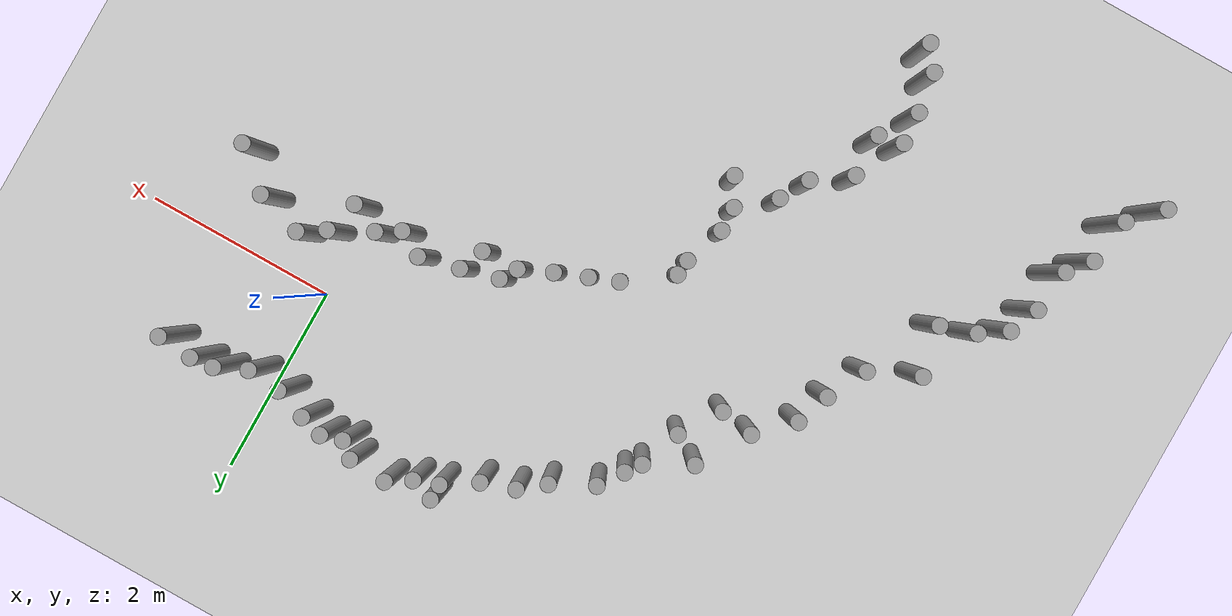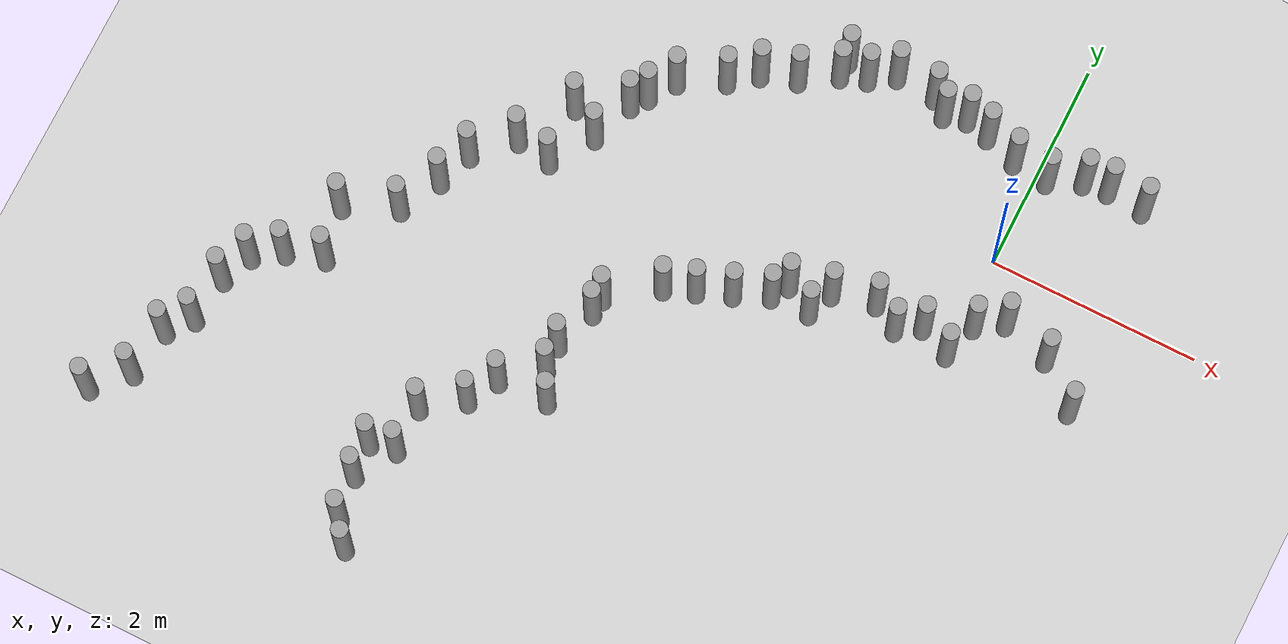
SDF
<sdf version="1.6">
 <world name="default">
  <model name="ground_plane">
   <static>1</static>
   <link name="link">
    <collision name="collision">
     <geometry><plane><normal>0 0 1</normal><size>100 100</size></plane></geometry>
     <surface><friction><ode><mu>100</mu><mu2>50</mu2></ode></friction></surface>
    </collision>
    <visual name="visual">
     <cast_shadows>0</cast_shadows>
     <geometry><plane><normal>0 0 1</normal><size>100 100</size></plane></geometry>
     <material>
      <script><uri>file://media/materials/scripts/gazebo.material</uri><name>Gazebo/Grey</name></script>
     </material>
    </visual>
   </link>
  </model>
  <model name="unit_cylinder_0">
   <pose>0.355357 -0.504616 0.499995 0 0 -1.4e-05</pose>
   <link name="link">
    <inertial>
     <mass>1</mass>
     <inertia><ixx>0.145833</ixx><ixy>0</ixy><ixz>0</ixz><iyy>0.145833</iyy><iyz>0</iyz><izz>0.125</izz></inertia>
    </inertial>
    <collision name="collision">
     <geometry><cylinder><radius>0.0811365</radius><length>1</length></cylinder></geometry>
    </collision>
    <visual name="visual">
     <geometry><cylinder><radius>0.0811365</radius><length>1</length></cylinder></geometry>
     <material>
      <script><name>Gazebo/Grey</name><uri>file://media/materials/scripts/gazebo.material</uri></script>
     </material>
    </visual>
   </link>
  </model>
  <model name="unit_cylinder_0_clone">
   <pose>0.817751 -0.645619 0.499993 0 -0 0.003141</pose>
   <link name="link">
    <inertial>
     <mass>1</mass>
     <inertia><ixx>0.145833</ixx><ixy>0</ixy><ixz>0</ixz><iyy>0.145833</iyy><iyz>0</iyz><izz>0.125</izz></inertia>
    </inertial>
    <collision name="collision">
     <geometry><cylinder><radius>0.0811363</radius><length>1</length></cylinder></geometry>
    </collision>
    <visual name="visual">
     <geometry><cylinder><radius>0.0811363</radius><length>1</length></cylinder></geometry>
     <material>
      <script><name>Gazebo/Grey</name><uri>file://media/materials/scripts/gazebo.material</uri></script>
     </material>
    </visual>
   </link>
  </model>
  <model name="unit_cylinder_0_clone_clone">
   <pose>1.20742 -0.981702 0.5 0 -0 0.006974</pose>
   <link name="link">
    <inertial>
     <mass>1</mass>
     <inertia><ixx>0.145833</ixx><ixy>0</ixy><ixz>0</ixz><iyy>0.145833</iyy><iyz>0</iyz><izz>0.125</izz></inertia>
    </inertial>
    <collision name="collision">
     <geometry><cylinder><radius>0.0811363</radius><length>1</length></cylinder></geometry>
    </collision>
    <visual name="visual">
     <geometry><cylinder><radius>0.0811363</radius><length>1</length></cylinder></geometry>
     <material>
      <script><name>Gazebo/Grey</name><uri>file://media/materials/scripts/gazebo.material</uri></script>
     </material>
    </visual>
   </link>
  </model>
  <model name="unit_cylinder_0_clone_clone_38">
   <pose>-4.24607 -4.05302 0.49999 0 -0 0.004737</pose>
   <link name="link">
    <inertial>
     <mass>1</mass>
     <inertia><ixx>0.145833</ixx><ixy>0</ixy><ixz>0</ixz><iyy>0.145833</iyy><iyz>0</iyz><izz>0.125</izz></inertia>
    </inertial>
    <collision name="collision">
     <geometry><cylinder><radius>0.0811363</radius><length>1</length></cylinder></geometry>
    </collision>
    <visual name="visual">
     <geometry><cylinder><radius>0.0811363</radius><length>1</length></cylinder></geometry>
     <material>
      <script><name>Gazebo/Grey</name><uri>file://media/materials/scripts/gazebo.material</uri></script>
     </material>
    </visual>
   </link>
  </model>
  <model name="unit_cylinder_0_clone_clone_39">
   <pose>-2.99157 -1.91916 0.499993 0 -0 0.0032</pose>
   <link name="link">
    <inertial>
     <mass>1</mass>
     <inertia><ixx>0.145833</ixx><ixy>0</ixy><ixz>0</ixz><iyy>0.145833</iyy><iyz>0</iyz><izz>0.125</izz></inertia>
    </inertial>
    <collision name="collision">
     <geometry><cylinder><radius>0.0811363</radius><length>1</length></cylinder></geometry>
    </collision>
    <visual name="visual">
     <geometry><cylinder><radius>0.0811363</radius><length>1</length></cylinder></geometry>
     <material>
      <script><name>Gazebo/Grey</name><uri>file://media/materials/scripts/gazebo.material</uri></script>
     </material>
    </visual>
   </link>
  </model>
  <model name="unit_cylinder_0_clone_clone_40">
   <pose>-1.1681 -0.958311 0.49999 0 -0 0.005399</pose>
   <link name="link">
    <inertial>
     <mass>1</mass>
     <inertia><ixx>0.145833</ixx><ixy>0</ixy><ixz>0</ixz><iyy>0.145833</iyy><iyz>0</iyz><izz>0.125</izz></inertia>
    </inertial>
    <collision name="collision">
     <geometry><cylinder><radius>0.0811363</radius><length>1</length></cylinder></geometry>
    </collision>
    <visual name="visual">
     <geometry><cylinder><radius>0.0811363</radius><length>1</length></cylinder></geometry>
     <material>
      <script><name>Gazebo/Grey</name><uri>file://media/materials/scripts/gazebo.material</uri></script>
     </material>
    </visual>
   </link>
  </model>
  <model name="unit_cylinder_0_clone_clone_95">
   <pose>-4.22852 -4.37488 0.499996 0 -0 0.004624</pose>
   <link name="link">
    <inertial>
     <mass>1</mass>
     <inertia><ixx>0.145833</ixx><ixy>0</ixy><ixz>0</ixz><iyy>0.145833</iyy><iyz>0</iyz><izz>0.125</izz></inertia>
    </inertial>
    <collision name="collision">
     <geometry><cylinder><radius>0.0811363</radius><length>1</length></cylinder></geometry>
    </collision>
    <visual name="visual">
     <geometry><cylinder><radius>0.0811363</radius><length>1</length></cylinder></geometry>
     <material>
      <script><name>Gazebo/Grey</name><uri>file://media/materials/scripts/gazebo.material</uri></script>
     </material>
    </visual>
   </link>
  </model>
  <model name="unit_cylinder_0_clone_clone_96">
   <pose>-4.16777 -4.77592 0.5 0 -0 0.007017</pose>
   <link name="link">
    <inertial>
     <mass>1</mass>
     <inertia><ixx>0.145833</ixx><ixy>0</ixy><ixz>0</ixz><iyy>0.145833</iyy><iyz>0</iyz><izz>0.125</izz></inertia>
    </inertial>
    <collision name="collision">
     <geometry><cylinder><radius>0.0811363</radius><length>1</length></cylinder></geometry>
    </collision>
    <visual name="visual">
     <geometry><cylinder><radius>0.0811363</radius><length>1</length></cylinder></geometry>
     <material>
      <script><name>Gazebo/Grey</name><uri>file://media/materials/scripts/gazebo.material</uri></script>
     </material>
    </visual>
   </link>
  </model>
  <model name="unit_cylinder_0_clone_clone_97">
   <pose>-4 -5 0.499995 0 -0 0.003779</pose>
   <link name="link">
    <inertial>
     <mass>1</mass>
     <inertia><ixx>0.145833</ixx><ixy>0</ixy><ixz>0</ixz><iyy>0.145833</iyy><iyz>0</iyz><izz>0.125</izz></inertia>
    </inertial>
    <collision name="collision">
     <geometry><cylinder><radius>0.0811363</radius><length>1</length></cylinder></geometry>
    </collision>
    <visual name="visual">
     <geometry><cylinder><radius>0.0811363</radius><length>1</length></cylinder></geometry>
     <material>
      <script><name>Gazebo/Grey</name><uri>file://media/materials/scripts/gazebo.material</uri></script>
     </material>
    </visual>
   </link>
  </model>
  <model name="unit_cylinder_0_clone_clone_101">
   <pose>-4 -4 0.499996 0 -0 0.003758</pose>
   <link name="link">
    <inertial>
     <mass>1</mass>
     <inertia><ixx>0.145833</ixx><ixy>0</ixy><ixz>0</ixz><iyy>0.145833</iyy><iyz>0</iyz><izz>0.125</izz></inertia>
    </inertial>
    <collision name="collision">
     <geometry><cylinder><radius>0.0811363</radius><length>1</length></cylinder></geometry>
    </collision>
    <visual name="visual">
     <geometry><cylinder><radius>0.0811363</radius><length>1</length></cylinder></geometry>
     <material>
      <script><name>Gazebo/Grey</name><uri>file://media/materials/scripts/gazebo.material</uri></script>
     </material>
    </visual>
   </link>
  </model>
  <model name="unit_cylinder_0_clone_clone_102">
   <pose>-4 -3.56464 0.5 0 -0 0.006809</pose>
   <link name="link">
    <inertial>
     <mass>1</mass>
     <inertia><ixx>0.145833</ixx><ixy>0</ixy><ixz>0</ixz><iyy>0.145833</iyy><iyz>0</iyz><izz>0.125</izz></inertia>
    </inertial>
    <collision name="collision">
     <geometry><cylinder><radius>0.0811363</radius><length>1</length></cylinder></geometry>
    </collision>
    <visual name="visual">
     <geometry><cylinder><radius>0.0811363</radius><length>1</length></cylinder></geometry>
     <material>
      <script><name>Gazebo/Grey</name><uri>file://media/materials/scripts/gazebo.material</uri></script>
     </material>
    </visual>
   </link>
  </model>
  <model name="unit_cylinder_0_clone_clone_103">
   <pose>-3.63963 -3.31021 0.499995 0 -0 0.00375</pose>
   <link name="link">
    <inertial>
     <mass>1</mass>
     <inertia><ixx>0.145833</ixx><ixy>0</ixy><ixz>0</ixz><iyy>0.145833</iyy><iyz>0</iyz><izz>0.125</izz></inertia>
    </inertial>
    <collision name="collision">
     <geometry><cylinder><radius>0.0811363</radius><length>1</length></cylinder></geometry>
    </collision>
    <visual name="visual">
     <geometry><cylinder><radius>0.0811363</radius><length>1</length></cylinder></geometry>
     <material>
      <script><name>Gazebo/Grey</name><uri>file://media/materials/scripts/gazebo.material</uri></script>
     </material>
    </visual>
   </link>
  </model>
  <model name="unit_cylinder_0_clone_clone_104">
   <pose>-3.47962 -3.02284 0.499996 0 -0 0.003747</pose>
   <link name="link">
    <inertial>
     <mass>1</mass>
     <inertia><ixx>0.145833</ixx><ixy>0</ixy><ixz>0</ixz><iyy>0.145833</iyy><iyz>0</iyz><izz>0.125</izz></inertia>
    </inertial>
    <collision name="collision">
     <geometry><cylinder><radius>0.0811363</radius><length>1</length></cylinder></geometry>
    </collision>
    <visual name="visual">
     <geometry><cylinder><radius>0.0811363</radius><length>1</length></cylinder></geometry>
     <material>
      <script><name>Gazebo/Grey</name><uri>file://media/materials/scripts/gazebo.material</uri></script>
     </material>
    </visual>
   </link>
  </model>
  <model name="unit_cylinder_0_clone_clone_105">
   <pose>-3 -2.99995 0.5 0 -0 0.006712</pose>
   <link name="link">
    <inertial>
     <mass>1</mass>
     <inertia><ixx>0.145833</ixx><ixy>0</ixy><ixz>0</ixz><iyy>0.145833</iyy><iyz>0</iyz><izz>0.125</izz></inertia>
    </inertial>
    <collision name="collision">
     <geometry><cylinder><radius>0.0811363</radius><length>1</length></cylinder></geometry>
    </collision>
    <visual name="visual">
     <geometry><cylinder><radius>0.0811363</radius><length>1</length></cylinder></geometry>
     <material>
      <script><name>Gazebo/Grey</name><uri>file://media/materials/scripts/gazebo.material</uri></script>
     </material>
    </visual>
   </link>
  </model>
  <model name="unit_cylinder_0_clone_clone_106">
   <pose>-3.14968 -2.48621 0.49999 0 -0 0.006577</pose>
   <link name="link">
    <inertial>
     <mass>1</mass>
     <inertia><ixx>0.145833</ixx><ixy>0</ixy><ixz>0</ixz><iyy>0.145833</iyy><iyz>0</iyz><izz>0.125</izz></inertia>
    </inertial>
    <collision name="collision">
     <geometry><cylinder><radius>0.0811363</radius><length>1</length></cylinder></geometry>
    </collision>
    <visual name="visual">
     <geometry><cylinder><radius>0.0811363</radius><length>1</length></cylinder></geometry>
     <material>
      <script><name>Gazebo/Grey</name><uri>file://media/materials/scripts/gazebo.material</uri></script>
     </material>
    </visual>
   </link>
  </model>
  <model name="unit_cylinder_0_clone_clone_107">
   <pose>-3.00823 -2.08059 0.499995 0 -0 0.004126</pose>
   <link name="link">
    <inertial>
     <mass>1</mass>
     <inertia><ixx>0.145833</ixx><ixy>0</ixy><ixz>0</ixz><iyy>0.145833</iyy><iyz>0</iyz><izz>0.125</izz></inertia>
    </inertial>
    <collision name="collision">
     <geometry><cylinder><radius>0.0811363</radius><length>1</length></cylinder></geometry>
    </collision>
    <visual name="visual">
     <geometry><cylinder><radius>0.0811363</radius><length>1</length></cylinder></geometry>
     <material>
      <script><name>Gazebo/Grey</name><uri>file://media/materials/scripts/gazebo.material</uri></script>
     </material>
    </visual>
   </link>
  </model>
  <model name="unit_cylinder_0_clone_clone_108">
   <pose>-3.14386 -2.73288 0.499997 0 -0 0.003156</pose>
   <link name="link">
    <inertial>
     <mass>1</mass>
     <inertia><ixx>0.145833</ixx><ixy>0</ixy><ixz>0</ixz><iyy>0.145833</iyy><iyz>0</iyz><izz>0.125</izz></inertia>
    </inertial>
    <collision name="collision">
     <geometry><cylinder><radius>0.0811363</radius><length>1</length></cylinder></geometry>
    </collision>
    <visual name="visual">
     <geometry><cylinder><radius>0.0811363</radius><length>1</length></cylinder></geometry>
     <material>
      <script><name>Gazebo/Grey</name><uri>file://media/materials/scripts/gazebo.material</uri></script>
     </material>
    </visual>
   </link>
  </model>
  <model name="unit_cylinder_0_clone_clone_109">
   <pose>0.106049 -0.659911 0.5 0 -0 0.006541</pose>
   <link name="link">
    <inertial>
     <mass>1</mass>
     <inertia><ixx>0.145833</ixx><ixy>0</ixy><ixz>0</ixz><iyy>0.145833</iyy><iyz>0</iyz><izz>0.125</izz></inertia>
    </inertial>
    <collision name="collision">
     <geometry><cylinder><radius>0.0811363</radius><length>1</length></cylinder></geometry>
    </collision>
    <visual name="visual">
     <geometry><cylinder><radius>0.0811363</radius><length>1</length></cylinder></geometry>
     <material>
      <script><name>Gazebo/Grey</name><uri>file://media/materials/scripts/gazebo.material</uri></script>
     </material>
    </visual>
   </link>
  </model>
  <model name="unit_cylinder_0_clone_clone_110">
   <pose>3e-06 -0.999957 0.5 0 -0 0.006484</pose>
   <link name="link">
    <inertial>
     <mass>1</mass>
     <inertia><ixx>0.145833</ixx><ixy>0</ixy><ixz>0</ixz><iyy>0.145833</iyy><iyz>0</iyz><izz>0.125</izz></inertia>
    </inertial>
    <collision name="collision">
     <geometry><cylinder><radius>0.0811363</radius><length>1</length></cylinder></geometry>
    </collision>
    <visual name="visual">
     <geometry><cylinder><radius>0.0811363</radius><length>1</length></cylinder></geometry>
     <material>
      <script><name>Gazebo/Grey</name><uri>file://media/materials/scripts/gazebo.material</uri></script>
     </material>
    </visual>
   </link>
  </model>
  <model name="unit_cylinder_0_clone_clone_111">
   <pose>-0.296256 -0.867594 0.499995 0 -0 0.003691</pose>
   <link name="link">
    <inertial>
     <mass>1</mass>
     <inertia><ixx>0.145833</ixx><ixy>0</ixy><ixz>0</ixz><iyy>0.145833</iyy><iyz>0</iyz><izz>0.125</izz></inertia>
    </inertial>
    <collision name="collision">
     <geometry><cylinder><radius>0.0811363</radius><length>1</length></cylinder></geometry>
    </collision>
    <visual name="visual">
     <geometry><cylinder><radius>0.0811363</radius><length>1</length></cylinder></geometry>
     <material>
      <script><name>Gazebo/Grey</name><uri>file://media/materials/scripts/gazebo.material</uri></script>
     </material>
    </visual>
   </link>
  </model>
  <model name="unit_cylinder_0_clone_clone_112">
   <pose>-0.518223 -0.999958 0.49999 0 -0 0.006406</pose>
   <link name="link">
    <inertial>
     <mass>1</mass>
     <inertia><ixx>0.145833</ixx><ixy>0</ixy><ixz>0</ixz><iyy>0.145833</iyy><iyz>0</iyz><izz>0.125</izz></inertia>
    </inertial>
    <collision name="collision">
     <geometry><cylinder><radius>0.0811363</radius><length>1</length></cylinder></geometry>
    </collision>
    <visual name="visual">
     <geometry><cylinder><radius>0.0811363</radius><length>1</length></cylinder></geometry>
     <material>
      <script><name>Gazebo/Grey</name><uri>file://media/materials/scripts/gazebo.material</uri></script>
     </material>
    </visual>
   </link>
  </model>
  <model name="unit_cylinder_0_clone_clone_113">
   <pose>-0.764966 -0.861976 0.499997 0 -0 0.003963</pose>
   <link name="link">
    <inertial>
     <mass>1</mass>
     <inertia><ixx>0.145833</ixx><ixy>0</ixy><ixz>0</ixz><iyy>0.145833</iyy><iyz>0</iyz><izz>0.125</izz></inertia>
    </inertial>
    <collision name="collision">
     <geometry><cylinder><radius>0.0811363</radius><length>1</length></cylinder></geometry>
    </collision>
    <visual name="visual">
     <geometry><cylinder><radius>0.0811363</radius><length>1</length></cylinder></geometry>
     <material>
      <script><name>Gazebo/Grey</name><uri>file://media/materials/scripts/gazebo.material</uri></script>
     </material>
    </visual>
   </link>
  </model>
  <model name="unit_cylinder_0_clone_clone_114">
   <pose>-1.27252 -1.20642 0.5 0 -0 0.006318</pose>
   <link name="link">
    <inertial>
     <mass>1</mass>
     <inertia><ixx>0.145833</ixx><ixy>0</ixy><ixz>0</ixz><iyy>0.145833</iyy><iyz>0</iyz><izz>0.125</izz></inertia>
    </inertial>
    <collision name="collision">
     <geometry><cylinder><radius>0.0811363</radius><length>1</length></cylinder></geometry>
    </collision>
    <visual name="visual">
     <geometry><cylinder><radius>0.0811363</radius><length>1</length></cylinder></geometry>
     <material>
      <script><name>Gazebo/Grey</name><uri>file://media/materials/scripts/gazebo.material</uri></script>
     </material>
    </visual>
   </link>
  </model>
  <model name="unit_cylinder_0_clone_clone_115">
   <pose>-1.54261 -1.05759 0.499997 0 -0 0.003391</pose>
   <link name="link">
    <inertial>
     <mass>1</mass>
     <inertia><ixx>0.145833</ixx><ixy>0</ixy><ixz>0</ixz><iyy>0.145833</iyy><iyz>0</iyz><izz>0.125</izz></inertia>
    </inertial>
    <collision name="collision">
     <geometry><cylinder><radius>0.0811363</radius><length>1</length></cylinder></geometry>
    </collision>
    <visual name="visual">
     <geometry><cylinder><radius>0.0811363</radius><length>1</length></cylinder></geometry>
     <material>
      <script><name>Gazebo/Grey</name><uri>file://media/materials/scripts/gazebo.material</uri></script>
     </material>
    </visual>
   </link>
  </model>
  <model name="unit_cylinder_0_clone_clone_116">
   <pose>-1.64248 -1.22064 0.49999 0 -0 0.006253</pose>
   <link name="link">
    <inertial>
     <mass>1</mass>
     <inertia><ixx>0.145833</ixx><ixy>0</ixy><ixz>0</ixz><iyy>0.145833</iyy><iyz>0</iyz><izz>0.125</izz></inertia>
    </inertial>
    <collision name="collision">
     <geometry><cylinder><radius>0.0811363</radius><length>1</length></cylinder></geometry>
    </collision>
    <visual name="visual">
     <geometry><cylinder><radius>0.0811363</radius><length>1</length></cylinder></geometry>
     <material>
      <script><name>Gazebo/Grey</name><uri>file://media/materials/scripts/gazebo.material</uri></script>
     </material>
    </visual>
   </link>
  </model>
  <model name="unit_cylinder_0_clone_clone_117">
   <pose>-1.9591 -1.36129 0.49999 0 -0 0.006203</pose>
   <link name="link">
    <inertial>
     <mass>1</mass>
     <inertia><ixx>0.145833</ixx><ixy>0</ixy><ixz>0</ixz><iyy>0.145833</iyy><iyz>0</iyz><izz>0.125</izz></inertia>
    </inertial>
    <collision name="collision">
     <geometry><cylinder><radius>0.0811363</radius><length>1</length></cylinder></geometry>
    </collision>
    <visual name="visual">
     <geometry><cylinder><radius>0.0811363</radius><length>1</length></cylinder></geometry>
     <material>
      <script><name>Gazebo/Grey</name><uri>file://media/materials/scripts/gazebo.material</uri></script>
     </material>
    </visual>
   </link>
  </model>
  <model name="unit_cylinder_0_clone_clone_118">
   <pose>-2.26755 -1.48322 0.5 0 -0 0.00605</pose>
   <link name="link">
    <inertial>
     <mass>1</mass>
     <inertia><ixx>0.145833</ixx><ixy>0</ixy><ixz>0</ixz><iyy>0.145833</iyy><iyz>0</iyz><izz>0.125</izz></inertia>
    </inertial>
    <collision name="collision">
     <geometry><cylinder><radius>0.0811363</radius><length>1</length></cylinder></geometry>
    </collision>
    <visual name="visual">
     <geometry><cylinder><radius>0.0811363</radius><length>1</length></cylinder></geometry>
     <material>
      <script><name>Gazebo/Grey</name><uri>file://media/materials/scripts/gazebo.material</uri></script>
     </material>
    </visual>
   </link>
  </model>
  <model name="unit_cylinder_0_clone_clone_119">
   <pose>-2.54715 -1.59252 0.5 0 -0 0.006175</pose>
   <link name="link">
    <inertial>
     <mass>1</mass>
     <inertia><ixx>0.145833</ixx><ixy>0</ixy><ixz>0</ixz><iyy>0.145833</iyy><iyz>0</iyz><izz>0.125</izz></inertia>
    </inertial>
    <collision name="collision">
     <geometry><cylinder><radius>0.0811363</radius><length>1</length></cylinder></geometry>
    </collision>
    <visual name="visual">
     <geometry><cylinder><radius>0.0811363</radius><length>1</length></cylinder></geometry>
     <material>
      <script><name>Gazebo/Grey</name><uri>file://media/materials/scripts/gazebo.material</uri></script>
     </material>
    </visual>
   </link>
  </model>
  <model name="unit_cylinder_0_clone_clone_120">
   <pose>0.103432 0.859531 0.5 0 -0 0.006087</pose>
   <link name="link">
    <inertial>
     <mass>1</mass>
     <inertia><ixx>0.145833</ixx><ixy>0</ixy><ixz>0</ixz><iyy>0.145833</iyy><iyz>0</iyz><izz>0.125</izz></inertia>
    </inertial>
    <collision name="collision">
     <geometry><cylinder><radius>0.0811363</radius><length>1</length></cylinder></geometry>
    </collision>
    <visual name="visual">
     <geometry><cylinder><radius>0.0811363</radius><length>1</length></cylinder></geometry>
     <material>
      <script><name>Gazebo/Grey</name><uri>file://media/materials/scripts/gazebo.material</uri></script>
     </material>
    </visual>
   </link>
  </model>
  <model name="unit_cylinder_0_clone_clone_132">
   <pose>-6.43885 -4.43373 0.5 0 -0 0.005708</pose>
   <link name="link">
    <inertial>
     <mass>1</mass>
     <inertia><ixx>0.145833</ixx><ixy>0</ixy><ixz>0</ixz><iyy>0.145833</iyy><iyz>0</iyz><izz>0.125</izz></inertia>
    </inertial>
    <collision name="collision">
     <geometry><cylinder><radius>0.0811363</radius><length>1</length></cylinder></geometry>
    </collision>
    <visual name="visual">
     <geometry><cylinder><radius>0.0811363</radius><length>1</length></cylinder></geometry>
     <material>
      <script><name>Gazebo/Grey</name><uri>file://media/materials/scripts/gazebo.material</uri></script>
     </material>
    </visual>
   </link>
  </model>
  <model name="unit_cylinder_0_clone_clone_133">
   <pose>-4.99999 -2 0.499997 0 -0 0.003146</pose>
   <link name="link">
    <inertial>
     <mass>1</mass>
     <inertia><ixx>0.145833</ixx><ixy>0</ixy><ixz>0</ixz><iyy>0.145833</iyy><iyz>0</iyz><izz>0.125</izz></inertia>
    </inertial>
    <collision name="collision">
     <geometry><cylinder><radius>0.0811363</radius><length>1</length></cylinder></geometry>
    </collision>
    <visual name="visual">
     <geometry><cylinder><radius>0.0811363</radius><length>1</length></cylinder></geometry>
     <material>
      <script><name>Gazebo/Grey</name><uri>file://media/materials/scripts/gazebo.material</uri></script>
     </material>
    </visual>
   </link>
  </model>
  <model name="unit_cylinder_0_clone_clone_134">
   <pose>-2.89713 0.407217 0.49999 0 -0 0.00566</pose>
   <link name="link">
    <inertial>
     <mass>1</mass>
     <inertia><ixx>0.145833</ixx><ixy>0</ixy><ixz>0</ixz><iyy>0.145833</iyy><iyz>0</iyz><izz>0.125</izz></inertia>
    </inertial>
    <collision name="collision">
     <geometry><cylinder><radius>0.0811363</radius><length>1</length></cylinder></geometry>
    </collision>
    <visual name="visual">
     <geometry><cylinder><radius>0.0811363</radius><length>1</length></cylinder></geometry>
     <material>
      <script><name>Gazebo/Grey</name><uri>file://media/materials/scripts/gazebo.material</uri></script>
     </material>
    </visual>
   </link>
  </model>
  <model name="unit_cylinder_0_clone_clone_135">
   <pose>-5.48688 -2.21682 0.5 0 -0 0.005581</pose>
   <link name="link">
    <inertial>
     <mass>1</mass>
     <inertia><ixx>0.145833</ixx><ixy>0</ixy><ixz>0</ixz><iyy>0.145833</iyy><iyz>0</iyz><izz>0.125</izz></inertia>
    </inertial>
    <collision name="collision">
     <geometry><cylinder><radius>0.0811363</radius><length>1</length></cylinder></geometry>
    </collision>
    <visual name="visual">
     <geometry><cylinder><radius>0.0811363</radius><length>1</length></cylinder></geometry>
     <material>
      <script><name>Gazebo/Grey</name><uri>file://media/materials/scripts/gazebo.material</uri></script>
     </material>
    </visual>
   </link>
  </model>
  <model name="unit_cylinder_0_clone_clone_136">
   <pose>-5.38751 -2.715 0.49999 0 -0 0.005519</pose>
   <link name="link">
    <inertial>
     <mass>1</mass>
     <inertia><ixx>0.145833</ixx><ixy>0</ixy><ixz>0</ixz><iyy>0.145833</iyy><iyz>0</iyz><izz>0.125</izz></inertia>
    </inertial>
    <collision name="collision">
     <geometry><cylinder><radius>0.0811363</radius><length>1</length></cylinder></geometry>
    </collision>
    <visual name="visual">
     <geometry><cylinder><radius>0.0811363</radius><length>1</length></cylinder></geometry>
     <material>
      <script><name>Gazebo/Grey</name><uri>file://media/materials/scripts/gazebo.material</uri></script>
     </material>
    </visual>
   </link>
  </model>
  <model name="unit_cylinder_0_clone_clone_137">
   <pose>-6 -3 0.499995 0 -0 0.003864</pose>
   <link name="link">
    <inertial>
     <mass>1</mass>
     <inertia><ixx>0.145833</ixx><ixy>0</ixy><ixz>0</ixz><iyy>0.145833</iyy><iyz>0</iyz><izz>0.125</izz></inertia>
    </inertial>
    <collision name="collision">
     <geometry><cylinder><radius>0.0811363</radius><length>1</length></cylinder></geometry>
    </collision>
    <visual name="visual">
     <geometry><cylinder><radius>0.0811363</radius><length>1</length></cylinder></geometry>
     <material>
      <script><name>Gazebo/Grey</name><uri>file://media/materials/scripts/gazebo.material</uri></script>
     </material>
    </visual>
   </link>
  </model>
  <model name="unit_cylinder_0_clone_clone_138">
   <pose>-5.73846 -2.82901 0.49999 0 -0 0.005488</pose>
   <link name="link">
    <inertial>
     <mass>1</mass>
     <inertia><ixx>0.145833</ixx><ixy>0</ixy><ixz>0</ixz><iyy>0.145833</iyy><iyz>0</iyz><izz>0.125</izz></inertia>
    </inertial>
    <collision name="collision">
     <geometry><cylinder><radius>0.0811363</radius><length>1</length></cylinder></geometry>
    </collision>
    <visual name="visual">
     <geometry><cylinder><radius>0.0811363</radius><length>1</length></cylinder></geometry>
     <material>
      <script><name>Gazebo/Grey</name><uri>file://media/materials/scripts/gazebo.material</uri></script>
     </material>
    </visual>
   </link>
  </model>
  <model name="unit_cylinder_0_clone_clone_139">
   <pose>-6.12578 -3.30041 0.49999 0 -0 0.005474</pose>
   <link name="link">
    <inertial>
     <mass>1</mass>
     <inertia><ixx>0.145833</ixx><ixy>0</ixy><ixz>0</ixz><iyy>0.145833</iyy><iyz>0</iyz><izz>0.125</izz></inertia>
    </inertial>
    <collision name="collision">
     <geometry><cylinder><radius>0.0811363</radius><length>1</length></cylinder></geometry>
    </collision>
    <visual name="visual">
     <geometry><cylinder><radius>0.0811363</radius><length>1</length></cylinder></geometry>
     <material>
      <script><name>Gazebo/Grey</name><uri>file://media/materials/scripts/gazebo.material</uri></script>
     </material>
    </visual>
   </link>
  </model>
  <model name="unit_cylinder_0_clone_clone_140">
   <pose>-6.17869 -3.74133 0.5 0 -0 0.005439</pose>
   <link name="link">
    <inertial>
     <mass>1</mass>
     <inertia><ixx>0.145833</ixx><ixy>0</ixy><ixz>0</ixz><iyy>0.145833</iyy><iyz>0</iyz><izz>0.125</izz></inertia>
    </inertial>
    <collision name="collision">
     <geometry><cylinder><radius>0.0811363</radius><length>1</length></cylinder></geometry>
    </collision>
    <visual name="visual">
     <geometry><cylinder><radius>0.0811363</radius><length>1</length></cylinder></geometry>
     <material>
      <script><name>Gazebo/Grey</name><uri>file://media/materials/scripts/gazebo.material</uri></script>
     </material>
    </visual>
   </link>
  </model>
  <model name="unit_cylinder_0_clone_clone_141">
   <pose>-6.36162 -3.9636 0.5 0 -0 0.005403</pose>
   <link name="link">
    <inertial>
     <mass>1</mass>
     <inertia><ixx>0.145833</ixx><ixy>0</ixy><ixz>0</ixz><iyy>0.145833</iyy><iyz>0</iyz><izz>0.125</izz></inertia>
    </inertial>
    <collision name="collision">
     <geometry><cylinder><radius>0.0811363</radius><length>1</length></cylinder></geometry>
    </collision>
    <visual name="visual">
     <geometry><cylinder><radius>0.0811363</radius><length>1</length></cylinder></geometry>
     <material>
      <script><name>Gazebo/Grey</name><uri>file://media/materials/scripts/gazebo.material</uri></script>
     </material>
    </visual>
   </link>
  </model>
  <model name="unit_cylinder_0_clone_clone_142">
   <pose>-4.7957 -1.60559 0.499996 0 -0 0.003502</pose>
   <link name="link">
    <inertial>
     <mass>1</mass>
     <inertia><ixx>0.145833</ixx><ixy>0</ixy><ixz>0</ixz><iyy>0.145833</iyy><iyz>0</iyz><izz>0.125</izz></inertia>
    </inertial>
    <collision name="collision">
     <geometry><cylinder><radius>0.0811363</radius><length>1</length></cylinder></geometry>
    </collision>
    <visual name="visual">
     <geometry><cylinder><radius>0.0811363</radius><length>1</length></cylinder></geometry>
     <material>
      <script><name>Gazebo/Grey</name><uri>file://media/materials/scripts/gazebo.material</uri></script>
     </material>
    </visual>
   </link>
  </model>
  <model name="unit_cylinder_0_clone_clone_143">
   <pose>-4.67137 -1.26662 0.49999 0 -0 0.00535</pose>
   <link name="link">
    <inertial>
     <mass>1</mass>
     <inertia><ixx>0.145833</ixx><ixy>0</ixy><ixz>0</ixz><iyy>0.145833</iyy><iyz>0</iyz><izz>0.125</izz></inertia>
    </inertial>
    <collision name="collision">
     <geometry><cylinder><radius>0.0811363</radius><length>1</length></cylinder></geometry>
    </collision>
    <visual name="visual">
     <geometry><cylinder><radius>0.0811363</radius><length>1</length></cylinder></geometry>
     <material>
      <script><name>Gazebo/Grey</name><uri>file://media/materials/scripts/gazebo.material</uri></script>
     </material>
    </visual>
   </link>
  </model>
  <model name="unit_cylinder_0_clone_clone_144">
   <pose>-4 -0.999972 0.49999 0 -0 0.005326</pose>
   <link name="link">
    <inertial>
     <mass>1</mass>
     <inertia><ixx>0.145833</ixx><ixy>0</ixy><ixz>0</ixz><iyy>0.145833</iyy><iyz>0</iyz><izz>0.125</izz></inertia>
    </inertial>
    <collision name="collision">
     <geometry><cylinder><radius>0.0811363</radius><length>1</length></cylinder></geometry>
    </collision>
    <visual name="visual">
     <geometry><cylinder><radius>0.0811363</radius><length>1</length></cylinder></geometry>
     <material>
      <script><name>Gazebo/Grey</name><uri>file://media/materials/scripts/gazebo.material</uri></script>
     </material>
    </visual>
   </link>
  </model>
  <model name="unit_cylinder_0_clone_clone_145">
   <pose>-4.33993 -0.942777 0.499997 0 -0 0.00315</pose>
   <link name="link">
    <inertial>
     <mass>1</mass>
     <inertia><ixx>0.145833</ixx><ixy>0</ixy><ixz>0</ixz><iyy>0.145833</iyy><iyz>0</iyz><izz>0.125</izz></inertia>
    </inertial>
    <collision name="collision">
     <geometry><cylinder><radius>0.0811363</radius><length>1</length></cylinder></geometry>
    </collision>
    <visual name="visual">
     <geometry><cylinder><radius>0.0811363</radius><length>1</length></cylinder></geometry>
     <material>
      <script><name>Gazebo/Grey</name><uri>file://media/materials/scripts/gazebo.material</uri></script>
     </material>
    </visual>
   </link>
  </model>
  <model name="unit_cylinder_0_clone_clone_146">
   <pose>-4.01896 -0.431608 0.499995 0 -0 0.003488</pose>
   <link name="link">
    <inertial>
     <mass>1</mass>
     <inertia><ixx>0.145833</ixx><ixy>0</ixy><ixz>0</ixz><iyy>0.145833</iyy><iyz>0</iyz><izz>0.125</izz></inertia>
    </inertial>
    <collision name="collision">
     <geometry><cylinder><radius>0.0811363</radius><length>1</length></cylinder></geometry>
    </collision>
    <visual name="visual">
     <geometry><cylinder><radius>0.0811363</radius><length>1</length></cylinder></geometry>
     <material>
      <script><name>Gazebo/Grey</name><uri>file://media/materials/scripts/gazebo.material</uri></script>
     </material>
    </visual>
   </link>
  </model>
  <model name="unit_cylinder_0_clone_clone_147">
   <pose>-3.73533 -0.603947 0.499995 0 -0 0.003488</pose>
   <link name="link">
    <inertial>
     <mass>1</mass>
     <inertia><ixx>0.145833</ixx><ixy>0</ixy><ixz>0</ixz><iyy>0.145833</iyy><iyz>0</iyz><izz>0.125</izz></inertia>
    </inertial>
    <collision name="collision">
     <geometry><cylinder><radius>0.0811363</radius><length>1</length></cylinder></geometry>
    </collision>
    <visual name="visual">
     <geometry><cylinder><radius>0.0811363</radius><length>1</length></cylinder></geometry>
     <material>
      <script><name>Gazebo/Grey</name><uri>file://media/materials/scripts/gazebo.material</uri></script>
     </material>
    </visual>
   </link>
  </model>
  <model name="unit_cylinder_0_clone_clone_148">
   <pose>-3.58032 -0.192871 0.49999 0 -0 0.005262</pose>
   <link name="link">
    <inertial>
     <mass>1</mass>
     <inertia><ixx>0.145833</ixx><ixy>0</ixy><ixz>0</ixz><iyy>0.145833</iyy><iyz>0</iyz><izz>0.125</izz></inertia>
    </inertial>
    <collision name="collision">
     <geometry><cylinder><radius>0.0811363</radius><length>1</length></cylinder></geometry>
    </collision>
    <visual name="visual">
     <geometry><cylinder><radius>0.0811363</radius><length>1</length></cylinder></geometry>
     <material>
      <script><name>Gazebo/Grey</name><uri>file://media/materials/scripts/gazebo.material</uri></script>
     </material>
    </visual>
   </link>
  </model>
  <model name="unit_cylinder_0_clone_clone_149">
   <pose>-3.47149 -0.04538 0.5 0 -0 0.005252</pose>
   <link name="link">
    <inertial>
     <mass>1</mass>
     <inertia><ixx>0.145833</ixx><ixy>0</ixy><ixz>0</ixz><iyy>0.145833</iyy><iyz>0</iyz><izz>0.125</izz></inertia>
    </inertial>
    <collision name="collision">
     <geometry><cylinder><radius>0.0811363</radius><length>1</length></cylinder></geometry>
    </collision>
    <visual name="visual">
     <geometry><cylinder><radius>0.0811363</radius><length>1</length></cylinder></geometry>
     <material>
      <script><name>Gazebo/Grey</name><uri>file://media/materials/scripts/gazebo.material</uri></script>
     </material>
    </visual>
   </link>
  </model>
  <model name="unit_cylinder_0_clone_clone_150">
   <pose>-3.30509 0.195594 0.49999 0 -0 0.00524</pose>
   <link name="link">
    <inertial>
     <mass>1</mass>
     <inertia><ixx>0.145833</ixx><ixy>0</ixy><ixz>0</ixz><iyy>0.145833</iyy><iyz>0</iyz><izz>0.125</izz></inertia>
    </inertial>
    <collision name="collision">
     <geometry><cylinder><radius>0.0811363</radius><length>1</length></cylinder></geometry>
    </collision>
    <visual name="visual">
     <geometry><cylinder><radius>0.0811363</radius><length>1</length></cylinder></geometry>
     <material>
      <script><name>Gazebo/Grey</name><uri>file://media/materials/scripts/gazebo.material</uri></script>
     </material>
    </visual>
   </link>
  </model>
  <model name="unit_cylinder_0_clone_clone_151">
   <pose>-2.65551 0.600782 0.5 0 -0 0.005173</pose>
   <link name="link">
    <inertial>
     <mass>1</mass>
     <inertia><ixx>0.145833</ixx><ixy>0</ixy><ixz>0</ixz><iyy>0.145833</iyy><iyz>0</iyz><izz>0.125</izz></inertia>
    </inertial>
    <collision name="collision">
     <geometry><cylinder><radius>0.0811363</radius><length>1</length></cylinder></geometry>
    </collision>
    <visual name="visual">
     <geometry><cylinder><radius>0.0811363</radius><length>1</length></cylinder></geometry>
     <material>
      <script><name>Gazebo/Grey</name><uri>file://media/materials/scripts/gazebo.material</uri></script>
     </material>
    </visual>
   </link>
  </model>
  <model name="unit_cylinder_0_clone_clone_152">
   <pose>-2.32706 0.709655 0.5 0 -0 0.005133</pose>
   <link name="link">
    <inertial>
     <mass>1</mass>
     <inertia><ixx>0.145833</ixx><ixy>0</ixy><ixz>0</ixz><iyy>0.145833</iyy><iyz>0</iyz><izz>0.125</izz></inertia>
    </inertial>
    <collision name="collision">
     <geometry><cylinder><radius>0.0811363</radius><length>1</length></cylinder></geometry>
    </collision>
    <visual name="visual">
     <geometry><cylinder><radius>0.0811363</radius><length>1</length></cylinder></geometry>
     <material>
      <script><name>Gazebo/Grey</name><uri>file://media/materials/scripts/gazebo.material</uri></script>
     </material>
    </visual>
   </link>
  </model>
  <model name="unit_cylinder_0_clone_clone_153">
   <pose>-1.99704 1.08111 0.5 0 -0 0.005039</pose>
   <link name="link">
    <inertial>
     <mass>1</mass>
     <inertia><ixx>0.145833</ixx><ixy>0</ixy><ixz>0</ixz><iyy>0.145833</iyy><iyz>0</iyz><izz>0.125</izz></inertia>
    </inertial>
    <collision name="collision">
     <geometry><cylinder><radius>0.0811363</radius><length>1</length></cylinder></geometry>
    </collision>
    <visual name="visual">
     <geometry><cylinder><radius>0.0811363</radius><length>1</length></cylinder></geometry>
     <material>
      <script><name>Gazebo/Grey</name><uri>file://media/materials/scripts/gazebo.material</uri></script>
     </material>
    </visual>
   </link>
  </model>
  <model name="unit_cylinder_0_clone_clone_154">
   <pose>-2.00296 0.918942 0.49999 0 -0 0.004999</pose>
   <link name="link">
    <inertial>
     <mass>1</mass>
     <inertia><ixx>0.145833</ixx><ixy>0</ixy><ixz>0</ixz><iyy>0.145833</iyy><iyz>0</iyz><izz>0.125</izz></inertia>
    </inertial>
    <collision name="collision">
     <geometry><cylinder><radius>0.0811363</radius><length>1</length></cylinder></geometry>
    </collision>
    <visual name="visual">
     <geometry><cylinder><radius>0.0811363</radius><length>1</length></cylinder></geometry>
     <material>
      <script><name>Gazebo/Grey</name><uri>file://media/materials/scripts/gazebo.material</uri></script>
     </material>
    </visual>
   </link>
  </model>
  <model name="unit_cylinder_0_clone_clone_155">
   <pose>-0.238081 0.890942 0.5 0 -0 0.005034</pose>
   <link name="link">
    <inertial>
     <mass>1</mass>
     <inertia><ixx>0.145833</ixx><ixy>0</ixy><ixz>0</ixz><iyy>0.145833</iyy><iyz>0</iyz><izz>0.125</izz></inertia>
    </inertial>
    <collision name="collision">
     <geometry><cylinder><radius>0.0811363</radius><length>1</length></cylinder></geometry>
    </collision>
    <visual name="visual">
     <geometry><cylinder><radius>0.0811363</radius><length>1</length></cylinder></geometry>
     <material>
      <script><name>Gazebo/Grey</name><uri>file://media/materials/scripts/gazebo.material</uri></script>
     </material>
    </visual>
   </link>
  </model>
  <model name="unit_cylinder_0_clone_clone_156">
   <pose>-0.553792 1.00002 0.49999 0 -0 0.005013</pose>
   <link name="link">
    <inertial>
     <mass>1</mass>
     <inertia><ixx>0.145833</ixx><ixy>0</ixy><ixz>0</ixz><iyy>0.145833</iyy><iyz>0</iyz><izz>0.125</izz></inertia>
    </inertial>
    <collision name="collision">
     <geometry><cylinder><radius>0.0811363</radius><length>1</length></cylinder></geometry>
    </collision>
    <visual name="visual">
     <geometry><cylinder><radius>0.0811363</radius><length>1</length></cylinder></geometry>
     <material>
      <script><name>Gazebo/Grey</name><uri>file://media/materials/scripts/gazebo.material</uri></script>
     </material>
    </visual>
   </link>
  </model>
  <model name="unit_cylinder_0_clone_clone_157">
   <pose>-0.786649 1.06322 0.49999 0 -0 0.004979</pose>
   <link name="link">
    <inertial>
     <mass>1</mass>
     <inertia><ixx>0.145833</ixx><ixy>0</ixy><ixz>0</ixz><iyy>0.145833</iyy><iyz>0</iyz><izz>0.125</izz></inertia>
    </inertial>
    <collision name="collision">
     <geometry><cylinder><radius>0.0811363</radius><length>1</length></cylinder></geometry>
    </collision>
    <visual name="visual">
     <geometry><cylinder><radius>0.0811363</radius><length>1</length></cylinder></geometry>
     <material>
      <script><name>Gazebo/Grey</name><uri>file://media/materials/scripts/gazebo.material</uri></script>
     </material>
    </visual>
   </link>
  </model>
  <model name="unit_cylinder_0_clone_clone_158">
   <pose>-1.14707 1.12319 0.499997 0 -0 0.003151</pose>
   <link name="link">
    <inertial>
     <mass>1</mass>
     <inertia><ixx>0.145833</ixx><ixy>0</ixy><ixz>0</ixz><iyy>0.145833</iyy><iyz>0</iyz><izz>0.125</izz></inertia>
    </inertial>
    <collision name="collision">
     <geometry><cylinder><radius>0.0811363</radius><length>1</length></cylinder></geometry>
    </collision>
    <visual name="visual">
     <geometry><cylinder><radius>0.0811363</radius><length>1</length></cylinder></geometry>
     <material>
      <script><name>Gazebo/Grey</name><uri>file://media/materials/scripts/gazebo.material</uri></script>
     </material>
    </visual>
   </link>
  </model>
  <model name="unit_cylinder_0_clone_clone_159">
   <pose>-0.999999 1.00002 0.5 0 -0 0.004926</pose>
   <link name="link">
    <inertial>
     <mass>1</mass>
     <inertia><ixx>0.145833</ixx><ixy>0</ixy><ixz>0</ixz><iyy>0.145833</iyy><iyz>0</iyz><izz>0.125</izz></inertia>
    </inertial>
    <collision name="collision">
     <geometry><cylinder><radius>0.0811363</radius><length>1</length></cylinder></geometry>
    </collision>
    <visual name="visual">
     <geometry><cylinder><radius>0.0811363</radius><length>1</length></cylinder></geometry>
     <material>
      <script><name>Gazebo/Grey</name><uri>file://media/materials/scripts/gazebo.material</uri></script>
     </material>
    </visual>
   </link>
  </model>
  <model name="unit_cylinder_0_clone_clone_160">
   <pose>-1.53396 1.14715 0.499993 0 -0 0.003147</pose>
   <link name="link">
    <inertial>
     <mass>1</mass>
     <inertia><ixx>0.145833</ixx><ixy>0</ixy><ixz>0</ixz><iyy>0.145833</iyy><iyz>0</iyz><izz>0.125</izz></inertia>
    </inertial>
    <collision name="collision">
     <geometry><cylinder><radius>0.0811363</radius><length>1</length></cylinder></geometry>
    </collision>
    <visual name="visual">
     <geometry><cylinder><radius>0.0811363</radius><length>1</length></cylinder></geometry>
     <material>
      <script><name>Gazebo/Grey</name><uri>file://media/materials/scripts/gazebo.material</uri></script>
     </material>
    </visual>
   </link>
  </model>
  <model name="unit_cylinder_0_clone_clone_161">
   <pose>-1.763 1.0028 0.5 0 -0 0.004869</pose>
   <link name="link">
    <inertial>
     <mass>1</mass>
     <inertia><ixx>0.145833</ixx><ixy>0</ixy><ixz>0</ixz><iyy>0.145833</iyy><iyz>0</iyz><izz>0.125</izz></inertia>
    </inertial>
    <collision name="collision">
     <geometry><cylinder><radius>0.0811363</radius><length>1</length></cylinder></geometry>
    </collision>
    <visual name="visual">
     <geometry><cylinder><radius>0.0811363</radius><length>1</length></cylinder></geometry>
     <material>
      <script><name>Gazebo/Grey</name><uri>file://media/materials/scripts/gazebo.material</uri></script>
     </material>
    </visual>
   </link>
  </model>
  <model name="unit_cylinder_0_clone_clone_162">
   <pose>0.409499 1 0.499993 0 -0 0.003146</pose>
   <link name="link">
    <inertial>
     <mass>1</mass>
     <inertia><ixx>0.145833</ixx><ixy>0</ixy><ixz>0</ixz><iyy>0.145833</iyy><iyz>0</iyz><izz>0.125</izz></inertia>
    </inertial>
    <collision name="collision">
     <geometry><cylinder><radius>0.0811363</radius><length>1</length></cylinder></geometry>
    </collision>
    <visual name="visual">
     <geometry><cylinder><radius>0.0811363</radius><length>1</length></cylinder></geometry>
     <material>
      <script><name>Gazebo/Grey</name><uri>file://media/materials/scripts/gazebo.material</uri></script>
     </material>
    </visual>
   </link>
  </model>
  <model name="unit_cylinder_0_clone_clone_164">
   <pose>1.00001 1 0.499993 0 -0 0.003147</pose>
   <link name="link">
    <inertial>
     <mass>1</mass>
     <inertia><ixx>0.145833</ixx><ixy>0</ixy><ixz>0</ixz><iyy>0.145833</iyy><iyz>0</iyz><izz>0.125</izz></inertia>
    </inertial>
    <collision name="collision">
     <geometry><cylinder><radius>0.0811363</radius><length>1</length></cylinder></geometry>
    </collision>
    <visual name="visual">
     <geometry><cylinder><radius>0.0811363</radius><length>1</length></cylinder></geometry>
     <material>
      <script><name>Gazebo/Grey</name><uri>file://media/materials/scripts/gazebo.material</uri></script>
     </material>
    </visual>
   </link>
  </model>
  <model name="unit_cylinder_0_clone_clone_166">
   <pose>0.643712 1.02713 0.499997 0 -0 0.003151</pose>
   <link name="link">
    <inertial>
     <mass>1</mass>
     <inertia><ixx>0.145833</ixx><ixy>0</ixy><ixz>0</ixz><iyy>0.145833</iyy><iyz>0</iyz><izz>0.125</izz></inertia>
    </inertial>
    <collision name="collision">
     <geometry><cylinder><radius>0.0811363</radius><length>1</length></cylinder></geometry>
    </collision>
    <visual name="visual">
     <geometry><cylinder><radius>0.0811363</radius><length>1</length></cylinder></geometry>
     <material>
      <script><name>Gazebo/Grey</name><uri>file://media/materials/scripts/gazebo.material</uri></script>
     </material>
    </visual>
   </link>
  </model>
  <model name="unit_cylinder_0_clone_clone_248">
   <pose>-6.72993 -4.73201 0.499997 0 -0 0.003146</pose>
   <link name="link">
    <inertial>
     <mass>1</mass>
     <inertia><ixx>0.145833</ixx><ixy>0</ixy><ixz>0</ixz><iyy>0.145833</iyy><iyz>0</iyz><izz>0.125</izz></inertia>
    </inertial>
    <collision name="collision">
     <geometry><cylinder><radius>0.0811363</radius><length>1</length></cylinder></geometry>
    </collision>
    <visual name="visual">
     <geometry><cylinder><radius>0.0811363</radius><length>1</length></cylinder></geometry>
     <material>
      <script><name>Gazebo/Grey</name><uri>file://media/materials/scripts/gazebo.material</uri></script>
     </material>
    </visual>
   </link>
  </model>
 </world>
</sdf>
